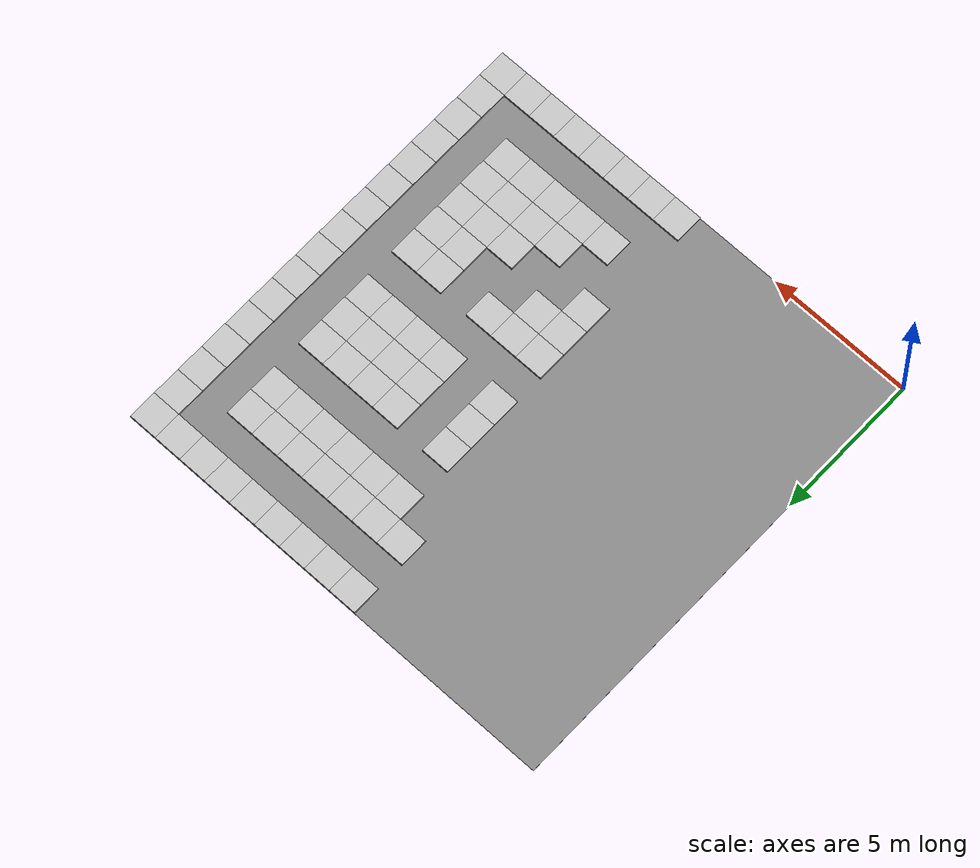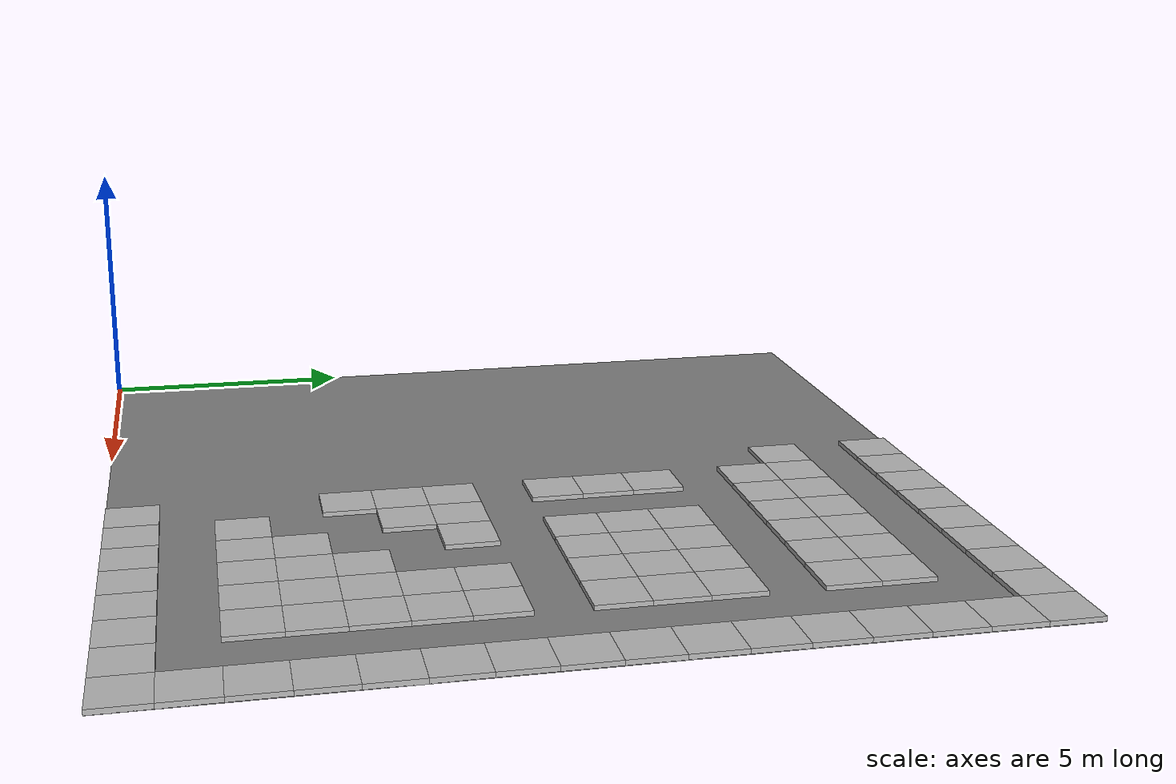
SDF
<sdf version="1.6">
 <world name="default">
  <include><uri>model://sun</uri></include>
  <model name="x7_y13">
   <static>true</static>
   <link name="link">
    <pose>7.5 13.5 0.05 0 0 0</pose>
    <visual name="visual"><geometry><box><size>1 1 0.1</size></box></geometry></visual>
    <collision name="collision"><geometry><box><size>1 1 0.1</size></box></geometry></collision>
   </link>
  </model>
  <model name="x7_y15">
   <static>true</static>
   <link name="link">
    <pose>7.5 15.5 0.05 0 0 0</pose>
    <visual name="visual"><geometry><box><size>1 1 0.1</size></box></geometry></visual>
    <collision name="collision"><geometry><box><size>1 1 0.1</size></box></geometry></collision>
   </link>
  </model>
  <model name="x8_y0">
   <static>true</static>
   <link name="link">
    <pose>8.5 0.5 0.05 0 0 0</pose>
    <visual name="visual"><geometry><box><size>1 1 0.1</size></box></geometry></visual>
    <collision name="collision"><geometry><box><size>1 1 0.1</size></box></geometry></collision>
   </link>
  </model>
  <model name="x8_y4">
   <static>true</static>
   <link name="link">
    <pose>8.5 4.5 0.05 0 0 0</pose>
    <visual name="visual"><geometry><box><size>1 1 0.1</size></box></geometry></visual>
    <collision name="collision"><geometry><box><size>1 1 0.1</size></box></geometry></collision>
   </link>
  </model>
  <model name="x8_y5">
   <static>true</static>
   <link name="link">
    <pose>8.5 5.5 0.05 0 0 0</pose>
    <visual name="visual"><geometry><box><size>1 1 0.1</size></box></geometry></visual>
    <collision name="collision"><geometry><box><size>1 1 0.1</size></box></geometry></collision>
   </link>
  </model>
  <model name="x8_y6">
   <static>true</static>
   <link name="link">
    <pose>8.5 6.5 0.05 0 0 0</pose>
    <visual name="visual"><geometry><box><size>1 1 0.1</size></box></geometry></visual>
    <collision name="collision"><geometry><box><size>1 1 0.1</size></box></geometry></collision>
   </link>
  </model>
  <model name="x8_y8">
   <static>true</static>
   <link name="link">
    <pose>8.5 8.5 0.05 0 0 0</pose>
    <visual name="visual"><geometry><box><size>1 1 0.1</size></box></geometry></visual>
    <collision name="collision"><geometry><box><size>1 1 0.1</size></box></geometry></collision>
   </link>
  </model>
  <model name="x8_y9">
   <static>true</static>
   <link name="link">
    <pose>8.5 9.5 0.05 0 0 0</pose>
    <visual name="visual"><geometry><box><size>1 1 0.1</size></box></geometry></visual>
    <collision name="collision"><geometry><box><size>1 1 0.1</size></box></geometry></collision>
   </link>
  </model>
  <model name="x8_y10">
   <static>true</static>
   <link name="link">
    <pose>8.5 10.5 0.05 0 0 0</pose>
    <visual name="visual"><geometry><box><size>1 1 0.1</size></box></geometry></visual>
    <collision name="collision"><geometry><box><size>1 1 0.1</size></box></geometry></collision>
   </link>
  </model>
  <model name="x8_y12">
   <static>true</static>
   <link name="link">
    <pose>8.5 12.5 0.05 0 0 0</pose>
    <visual name="visual"><geometry><box><size>1 1 0.1</size></box></geometry></visual>
    <collision name="collision"><geometry><box><size>1 1 0.1</size></box></geometry></collision>
   </link>
  </model>
  <model name="x8_y13">
   <static>true</static>
   <link name="link">
    <pose>8.5 13.5 0.05 0 0 0</pose>
    <visual name="visual"><geometry><box><size>1 1 0.1</size></box></geometry></visual>
    <collision name="collision"><geometry><box><size>1 1 0.1</size></box></geometry></collision>
   </link>
  </model>
  <model name="x8_y15">
   <static>true</static>
   <link name="link">
    <pose>8.5 15.5 0.05 0 0 0</pose>
    <visual name="visual"><geometry><box><size>1 1 0.1</size></box></geometry></visual>
    <collision name="collision"><geometry><box><size>1 1 0.1</size></box></geometry></collision>
   </link>
  </model>
  <model name="x9_y0">
   <static>true</static>
   <link name="link">
    <pose>9.5 0.5 0.05 0 0 0</pose>
    <visual name="visual"><geometry><box><size>1 1 0.1</size></box></geometry></visual>
    <collision name="collision"><geometry><box><size>1 1 0.1</size></box></geometry></collision>
   </link>
  </model>
  <model name="x9_y2">
   <static>true</static>
   <link name="link">
    <pose>9.5 2.5 0.05 0 0 0</pose>
    <visual name="visual"><geometry><box><size>1 1 0.1</size></box></geometry></visual>
    <collision name="collision"><geometry><box><size>1 1 0.1</size></box></geometry></collision>
   </link>
  </model>
  <model name="x9_y5">
   <static>true</static>
   <link name="link">
    <pose>9.5 5.5 0.05 0 0 0</pose>
    <visual name="visual"><geometry><box><size>1 1 0.1</size></box></geometry></visual>
    <collision name="collision"><geometry><box><size>1 1 0.1</size></box></geometry></collision>
   </link>
  </model>
  <model name="x9_y6">
   <static>true</static>
   <link name="link">
    <pose>9.5 6.5 0.05 0 0 0</pose>
    <visual name="visual"><geometry><box><size>1 1 0.1</size></box></geometry></visual>
    <collision name="collision"><geometry><box><size>1 1 0.1</size></box></geometry></collision>
   </link>
  </model>
  <model name="x9_y12">
   <static>true</static>
   <link name="link">
    <pose>9.5 12.5 0.05 0 0 0</pose>
    <visual name="visual"><geometry><box><size>1 1 0.1</size></box></geometry></visual>
    <collision name="collision"><geometry><box><size>1 1 0.1</size></box></geometry></collision>
   </link>
  </model>
  <model name="x9_y13">
   <static>true</static>
   <link name="link">
    <pose>9.5 13.5 0.05 0 0 0</pose>
    <visual name="visual"><geometry><box><size>1 1 0.1</size></box></geometry></visual>
    <collision name="collision"><geometry><box><size>1 1 0.1</size></box></geometry></collision>
   </link>
  </model>
  <model name="x9_y15">
   <static>true</static>
   <link name="link">
    <pose>9.5 15.5 0.05 0 0 0</pose>
    <visual name="visual"><geometry><box><size>1 1 0.1</size></box></geometry></visual>
    <collision name="collision"><geometry><box><size>1 1 0.1</size></box></geometry></collision>
   </link>
  </model>
  <model name="x10_y0">
   <static>true</static>
   <link name="link">
    <pose>10.5 0.5 0.05 0 0 0</pose>
    <visual name="visual"><geometry><box><size>1 1 0.1</size></box></geometry></visual>
    <collision name="collision"><geometry><box><size>1 1 0.1</size></box></geometry></collision>
   </link>
  </model>
  <model name="x10_y2">
   <static>true</static>
   <link name="link">
    <pose>10.5 2.5 0.05 0 0 0</pose>
    <visual name="visual"><geometry><box><size>1 1 0.1</size></box></geometry></visual>
    <collision name="collision"><geometry><box><size>1 1 0.1</size></box></geometry></collision>
   </link>
  </model>
  <model name="x10_y3">
   <static>true</static>
   <link name="link">
    <pose>10.5 3.5 0.05 0 0 0</pose>
    <visual name="visual"><geometry><box><size>1 1 0.1</size></box></geometry></visual>
    <collision name="collision"><geometry><box><size>1 1 0.1</size></box></geometry></collision>
   </link>
  </model>
  <model name="x10_y6">
   <static>true</static>
   <link name="link">
    <pose>10.5 6.5 0.05 0 0 0</pose>
    <visual name="visual"><geometry><box><size>1 1 0.1</size></box></geometry></visual>
    <collision name="collision"><geometry><box><size>1 1 0.1</size></box></geometry></collision>
   </link>
  </model>
  <model name="x10_y8">
   <static>true</static>
   <link name="link">
    <pose>10.5 8.5 0.05 0 0 0</pose>
    <visual name="visual"><geometry><box><size>1 1 0.1</size></box></geometry></visual>
    <collision name="collision"><geometry><box><size>1 1 0.1</size></box></geometry></collision>
   </link>
  </model>
  <model name="x10_y9">
   <static>true</static>
   <link name="link">
    <pose>10.5 9.5 0.05 0 0 0</pose>
    <visual name="visual"><geometry><box><size>1 1 0.1</size></box></geometry></visual>
    <collision name="collision"><geometry><box><size>1 1 0.1</size></box></geometry></collision>
   </link>
  </model>
  <model name="x10_y10">
   <static>true</static>
   <link name="link">
    <pose>10.5 10.5 0.05 0 0 0</pose>
    <visual name="visual"><geometry><box><size>1 1 0.1</size></box></geometry></visual>
    <collision name="collision"><geometry><box><size>1 1 0.1</size></box></geometry></collision>
   </link>
  </model>
  <model name="x10_y12">
   <static>true</static>
   <link name="link">
    <pose>10.5 12.5 0.05 0 0 0</pose>
    <visual name="visual"><geometry><box><size>1 1 0.1</size></box></geometry></visual>
    <collision name="collision"><geometry><box><size>1 1 0.1</size></box></geometry></collision>
   </link>
  </model>
  <model name="x10_y13">
   <static>true</static>
   <link name="link">
    <pose>10.5 13.5 0.05 0 0 0</pose>
    <visual name="visual"><geometry><box><size>1 1 0.1</size></box></geometry></visual>
    <collision name="collision"><geometry><box><size>1 1 0.1</size></box></geometry></collision>
   </link>
  </model>
  <model name="x10_y15">
   <static>true</static>
   <link name="link">
    <pose>10.5 15.5 0.05 0 0 0</pose>
    <visual name="visual"><geometry><box><size>1 1 0.1</size></box></geometry></visual>
    <collision name="collision"><geometry><box><size>1 1 0.1</size></box></geometry></collision>
   </link>
  </model>
  <model name="x11_y0">
   <static>true</static>
   <link name="link">
    <pose>11.5 0.5 0.05 0 0 0</pose>
    <visual name="visual"><geometry><box><size>1 1 0.1</size></box></geometry></visual>
    <collision name="collision"><geometry><box><size>1 1 0.1</size></box></geometry></collision>
   </link>
  </model>
  <model name="x11_y2">
   <static>true</static>
   <link name="link">
    <pose>11.5 2.5 0.05 0 0 0</pose>
    <visual name="visual"><geometry><box><size>1 1 0.1</size></box></geometry></visual>
    <collision name="collision"><geometry><box><size>1 1 0.1</size></box></geometry></collision>
   </link>
  </model>
  <model name="x11_y3">
   <static>true</static>
   <link name="link">
    <pose>11.5 3.5 0.05 0 0 0</pose>
    <visual name="visual"><geometry><box><size>1 1 0.1</size></box></geometry></visual>
    <collision name="collision"><geometry><box><size>1 1 0.1</size></box></geometry></collision>
   </link>
  </model>
  <model name="x11_y4">
   <static>true</static>
   <link name="link">
    <pose>11.5 4.5 0.05 0 0 0</pose>
    <visual name="visual"><geometry><box><size>1 1 0.1</size></box></geometry></visual>
    <collision name="collision"><geometry><box><size>1 1 0.1</size></box></geometry></collision>
   </link>
  </model>
  <model name="x11_y8">
   <static>true</static>
   <link name="link">
    <pose>11.5 8.5 0.05 0 0 0</pose>
    <visual name="visual"><geometry><box><size>1 1 0.1</size></box></geometry></visual>
    <collision name="collision"><geometry><box><size>1 1 0.1</size></box></geometry></collision>
   </link>
  </model>
  <model name="x11_y9">
   <static>true</static>
   <link name="link">
    <pose>11.5 9.5 0.05 0 0 0</pose>
    <visual name="visual"><geometry><box><size>1 1 0.1</size></box></geometry></visual>
    <collision name="collision"><geometry><box><size>1 1 0.1</size></box></geometry></collision>
   </link>
  </model>
  <model name="x11_y10">
   <static>true</static>
   <link name="link">
    <pose>11.5 10.5 0.05 0 0 0</pose>
    <visual name="visual"><geometry><box><size>1 1 0.1</size></box></geometry></visual>
    <collision name="collision"><geometry><box><size>1 1 0.1</size></box></geometry></collision>
   </link>
  </model>
  <model name="x11_y12">
   <static>true</static>
   <link name="link">
    <pose>11.5 12.5 0.05 0 0 0</pose>
    <visual name="visual"><geometry><box><size>1 1 0.1</size></box></geometry></visual>
    <collision name="collision"><geometry><box><size>1 1 0.1</size></box></geometry></collision>
   </link>
  </model>
  <model name="x11_y13">
   <static>true</static>
   <link name="link">
    <pose>11.5 13.5 0.05 0 0 0</pose>
    <visual name="visual"><geometry><box><size>1 1 0.1</size></box></geometry></visual>
    <collision name="collision"><geometry><box><size>1 1 0.1</size></box></geometry></collision>
   </link>
  </model>
  <model name="x11_y15">
   <static>true</static>
   <link name="link">
    <pose>11.5 15.5 0.05 0 0 0</pose>
    <visual name="visual"><geometry><box><size>1 1 0.1</size></box></geometry></visual>
    <collision name="collision"><geometry><box><size>1 1 0.1</size></box></geometry></collision>
   </link>
  </model>
  <model name="x12_y0">
   <static>true</static>
   <link name="link">
    <pose>12.5 0.5 0.05 0 0 0</pose>
    <visual name="visual"><geometry><box><size>1 1 0.1</size></box></geometry></visual>
    <collision name="collision"><geometry><box><size>1 1 0.1</size></box></geometry></collision>
   </link>
  </model>
  <model name="x12_y2">
   <static>true</static>
   <link name="link">
    <pose>12.5 2.5 0.05 0 0 0</pose>
    <visual name="visual"><geometry><box><size>1 1 0.1</size></box></geometry></visual>
    <collision name="collision"><geometry><box><size>1 1 0.1</size></box></geometry></collision>
   </link>
  </model>
  <model name="x12_y3">
   <static>true</static>
   <link name="link">
    <pose>12.5 3.5 0.05 0 0 0</pose>
    <visual name="visual"><geometry><box><size>1 1 0.1</size></box></geometry></visual>
    <collision name="collision"><geometry><box><size>1 1 0.1</size></box></geometry></collision>
   </link>
  </model>
  <model name="x12_y4">
   <static>true</static>
   <link name="link">
    <pose>12.5 4.5 0.05 0 0 0</pose>
    <visual name="visual"><geometry><box><size>1 1 0.1</size></box></geometry></visual>
    <collision name="collision"><geometry><box><size>1 1 0.1</size></box></geometry></collision>
   </link>
  </model>
  <model name="x12_y5">
   <static>true</static>
   <link name="link">
    <pose>12.5 5.5 0.05 0 0 0</pose>
    <visual name="visual"><geometry><box><size>1 1 0.1</size></box></geometry></visual>
    <collision name="collision"><geometry><box><size>1 1 0.1</size></box></geometry></collision>
   </link>
  </model>
  <model name="x12_y6">
   <static>true</static>
   <link name="link">
    <pose>12.5 6.5 0.05 0 0 0</pose>
    <visual name="visual"><geometry><box><size>1 1 0.1</size></box></geometry></visual>
    <collision name="collision"><geometry><box><size>1 1 0.1</size></box></geometry></collision>
   </link>
  </model>
  <model name="x12_y8">
   <static>true</static>
   <link name="link">
    <pose>12.5 8.5 0.05 0 0 0</pose>
    <visual name="visual"><geometry><box><size>1 1 0.1</size></box></geometry></visual>
    <collision name="collision"><geometry><box><size>1 1 0.1</size></box></geometry></collision>
   </link>
  </model>
  <model name="x12_y9">
   <static>true</static>
   <link name="link">
    <pose>12.5 9.5 0.05 0 0 0</pose>
    <visual name="visual"><geometry><box><size>1 1 0.1</size></box></geometry></visual>
    <collision name="collision"><geometry><box><size>1 1 0.1</size></box></geometry></collision>
   </link>
  </model>
  <model name="x12_y10">
   <static>true</static>
   <link name="link">
    <pose>12.5 10.5 0.05 0 0 0</pose>
    <visual name="visual"><geometry><box><size>1 1 0.1</size></box></geometry></visual>
    <collision name="collision"><geometry><box><size>1 1 0.1</size></box></geometry></collision>
   </link>
  </model>
  <model name="x12_y12">
   <static>true</static>
   <link name="link">
    <pose>12.5 12.5 0.05 0 0 0</pose>
    <visual name="visual"><geometry><box><size>1 1 0.1</size></box></geometry></visual>
    <collision name="collision"><geometry><box><size>1 1 0.1</size></box></geometry></collision>
   </link>
  </model>
  <model name="x12_y13">
   <static>true</static>
   <link name="link">
    <pose>12.5 13.5 0.05 0 0 0</pose>
    <visual name="visual"><geometry><box><size>1 1 0.1</size></box></geometry></visual>
    <collision name="collision"><geometry><box><size>1 1 0.1</size></box></geometry></collision>
   </link>
  </model>
  <model name="x12_y15">
   <static>true</static>
   <link name="link">
    <pose>12.5 15.5 0.05 0 0 0</pose>
    <visual name="visual"><geometry><box><size>1 1 0.1</size></box></geometry></visual>
    <collision name="collision"><geometry><box><size>1 1 0.1</size></box></geometry></collision>
   </link>
  </model>
  <model name="x13_y0">
   <static>true</static>
   <link name="link">
    <pose>13.5 0.5 0.05 0 0 0</pose>
    <visual name="visual"><geometry><box><size>1 1 0.1</size></box></geometry></visual>
    <collision name="collision"><geometry><box><size>1 1 0.1</size></box></geometry></collision>
   </link>
  </model>
  <model name="x13_y2">
   <static>true</static>
   <link name="link">
    <pose>13.5 2.5 0.05 0 0 0</pose>
    <visual name="visual"><geometry><box><size>1 1 0.1</size></box></geometry></visual>
    <collision name="collision"><geometry><box><size>1 1 0.1</size></box></geometry></collision>
   </link>
  </model>
  <model name="x13_y3">
   <static>true</static>
   <link name="link">
    <pose>13.5 3.5 0.05 0 0 0</pose>
    <visual name="visual"><geometry><box><size>1 1 0.1</size></box></geometry></visual>
    <collision name="collision"><geometry><box><size>1 1 0.1</size></box></geometry></collision>
   </link>
  </model>
  <model name="x13_y4">
   <static>true</static>
   <link name="link">
    <pose>13.5 4.5 0.05 0 0 0</pose>
    <visual name="visual"><geometry><box><size>1 1 0.1</size></box></geometry></visual>
    <collision name="collision"><geometry><box><size>1 1 0.1</size></box></geometry></collision>
   </link>
  </model>
  <model name="x13_y5">
   <static>true</static>
   <link name="link">
    <pose>13.5 5.5 0.05 0 0 0</pose>
    <visual name="visual"><geometry><box><size>1 1 0.1</size></box></geometry></visual>
    <collision name="collision"><geometry><box><size>1 1 0.1</size></box></geometry></collision>
   </link>
  </model>
  <model name="x13_y6">
   <static>true</static>
   <link name="link">
    <pose>13.5 6.5 0.05 0 0 0</pose>
    <visual name="visual"><geometry><box><size>1 1 0.1</size></box></geometry></visual>
    <collision name="collision"><geometry><box><size>1 1 0.1</size></box></geometry></collision>
   </link>
  </model>
  <model name="x13_y8">
   <static>true</static>
   <link name="link">
    <pose>13.5 8.5 0.05 0 0 0</pose>
    <visual name="visual"><geometry><box><size>1 1 0.1</size></box></geometry></visual>
    <collision name="collision"><geometry><box><size>1 1 0.1</size></box></geometry></collision>
   </link>
  </model>
  <model name="x13_y9">
   <static>true</static>
   <link name="link">
    <pose>13.5 9.5 0.05 0 0 0</pose>
    <visual name="visual"><geometry><box><size>1 1 0.1</size></box></geometry></visual>
    <collision name="collision"><geometry><box><size>1 1 0.1</size></box></geometry></collision>
   </link>
  </model>
  <model name="x13_y10">
   <static>true</static>
   <link name="link">
    <pose>13.5 10.5 0.05 0 0 0</pose>
    <visual name="visual"><geometry><box><size>1 1 0.1</size></box></geometry></visual>
    <collision name="collision"><geometry><box><size>1 1 0.1</size></box></geometry></collision>
   </link>
  </model>
  <model name="x13_y12">
   <static>true</static>
   <link name="link">
    <pose>13.5 12.5 0.05 0 0 0</pose>
    <visual name="visual"><geometry><box><size>1 1 0.1</size></box></geometry></visual>
    <collision name="collision"><geometry><box><size>1 1 0.1</size></box></geometry></collision>
   </link>
  </model>
  <model name="x13_y13">
   <static>true</static>
   <link name="link">
    <pose>13.5 13.5 0.05 0 0 0</pose>
    <visual name="visual"><geometry><box><size>1 1 0.1</size></box></geometry></visual>
    <collision name="collision"><geometry><box><size>1 1 0.1</size></box></geometry></collision>
   </link>
  </model>
  <model name="x13_y15">
   <static>true</static>
   <link name="link">
    <pose>13.5 15.5 0.05 0 0 0</pose>
    <visual name="visual"><geometry><box><size>1 1 0.1</size></box></geometry></visual>
    <collision name="collision"><geometry><box><size>1 1 0.1</size></box></geometry></collision>
   </link>
  </model>
  <model name="x14_y0">
   <static>true</static>
   <link name="link">
    <pose>14.5 0.5 0.05 0 0 0</pose>
    <visual name="visual"><geometry><box><size>1 1 0.1</size></box></geometry></visual>
    <collision name="collision"><geometry><box><size>1 1 0.1</size></box></geometry></collision>
   </link>
  </model>
  <model name="x14_y15">
   <static>true</static>
   <link name="link">
    <pose>14.5 15.5 0.05 0 0 0</pose>
    <visual name="visual"><geometry><box><size>1 1 0.1</size></box></geometry></visual>
    <collision name="collision"><geometry><box><size>1 1 0.1</size></box></geometry></collision>
   </link>
  </model>
  <model name="x15_y0">
   <static>true</static>
   <link name="link">
    <pose>15.5 0.5 0.05 0 0 0</pose>
    <visual name="visual"><geometry><box><size>1 1 0.1</size></box></geometry></visual>
    <collision name="collision"><geometry><box><size>1 1 0.1</size></box></geometry></collision>
   </link>
  </model>
  <model name="x15_y1">
   <static>true</static>
   <link name="link">
    <pose>15.5 1.5 0.05 0 0 0</pose>
    <visual name="visual"><geometry><box><size>1 1 0.1</size></box></geometry></visual>
    <collision name="collision"><geometry><box><size>1 1 0.1</size></box></geometry></collision>
   </link>
  </model>
  <model name="x15_y2">
   <static>true</static>
   <link name="link">
    <pose>15.5 2.5 0.05 0 0 0</pose>
    <visual name="visual"><geometry><box><size>1 1 0.1</size></box></geometry></visual>
    <collision name="collision"><geometry><box><size>1 1 0.1</size></box></geometry></collision>
   </link>
  </model>
  <model name="x15_y3">
   <static>true</static>
   <link name="link">
    <pose>15.5 3.5 0.05 0 0 0</pose>
    <visual name="visual"><geometry><box><size>1 1 0.1</size></box></geometry></visual>
    <collision name="collision"><geometry><box><size>1 1 0.1</size></box></geometry></collision>
   </link>
  </model>
  <model name="x15_y4">
   <static>true</static>
   <link name="link">
    <pose>15.5 4.5 0.05 0 0 0</pose>
    <visual name="visual"><geometry><box><size>1 1 0.1</size></box></geometry></visual>
    <collision name="collision"><geometry><box><size>1 1 0.1</size></box></geometry></collision>
   </link>
  </model>
  <model name="x15_y5">
   <static>true</static>
   <link name="link">
    <pose>15.5 5.5 0.05 0 0 0</pose>
    <visual name="visual"><geometry><box><size>1 1 0.1</size></box></geometry></visual>
    <collision name="collision"><geometry><box><size>1 1 0.1</size></box></geometry></collision>
   </link>
  </model>
  <model name="x15_y6">
   <static>true</static>
   <link name="link">
    <pose>15.5 6.5 0.05 0 0 0</pose>
    <visual name="visual"><geometry><box><size>1 1 0.1</size></box></geometry></visual>
    <collision name="collision"><geometry><box><size>1 1 0.1</size></box></geometry></collision>
   </link>
  </model>
  <model name="x15_y7">
   <static>true</static>
   <link name="link">
    <pose>15.5 7.5 0.05 0 0 0</pose>
    <visual name="visual"><geometry><box><size>1 1 0.1</size></box></geometry></visual>
    <collision name="collision"><geometry><box><size>1 1 0.1</size></box></geometry></collision>
   </link>
  </model>
  <model name="x15_y8">
   <static>true</static>
   <link name="link">
    <pose>15.5 8.5 0.05 0 0 0</pose>
    <visual name="visual"><geometry><box><size>1 1 0.1</size></box></geometry></visual>
    <collision name="collision"><geometry><box><size>1 1 0.1</size></box></geometry></collision>
   </link>
  </model>
  <model name="x15_y9">
   <static>true</static>
   <link name="link">
    <pose>15.5 9.5 0.05 0 0 0</pose>
    <visual name="visual"><geometry><box><size>1 1 0.1</size></box></geometry></visual>
    <collision name="collision"><geometry><box><size>1 1 0.1</size></box></geometry></collision>
   </link>
  </model>
  <model name="x15_y10">
   <static>true</static>
   <link name="link">
    <pose>15.5 10.5 0.05 0 0 0</pose>
    <visual name="visual"><geometry><box><size>1 1 0.1</size></box></geometry></visual>
    <collision name="collision"><geometry><box><size>1 1 0.1</size></box></geometry></collision>
   </link>
  </model>
  <model name="x15_y11">
   <static>true</static>
   <link name="link">
    <pose>15.5 11.5 0.05 0 0 0</pose>
    <visual name="visual"><geometry><box><size>1 1 0.1</size></box></geometry></visual>
    <collision name="collision"><geometry><box><size>1 1 0.1</size></box></geometry></collision>
   </link>
  </model>
  <model name="x15_y12">
   <static>true</static>
   <link name="link">
    <pose>15.5 12.5 0.05 0 0 0</pose>
    <visual name="visual"><geometry><box><size>1 1 0.1</size></box></geometry></visual>
    <collision name="collision"><geometry><box><size>1 1 0.1</size></box></geometry></collision>
   </link>
  </model>
  <model name="x15_y13">
   <static>true</static>
   <link name="link">
    <pose>15.5 13.5 0.05 0 0 0</pose>
    <visual name="visual"><geometry><box><size>1 1 0.1</size></box></geometry></visual>
    <collision name="collision"><geometry><box><size>1 1 0.1</size></box></geometry></collision>
   </link>
  </model>
  <model name="x15_y14">
   <static>true</static>
   <link name="link">
    <pose>15.5 14.5 0.05 0 0 0</pose>
    <visual name="visual"><geometry><box><size>1 1 0.1</size></box></geometry></visual>
    <collision name="collision"><geometry><box><size>1 1 0.1</size></box></geometry></collision>
   </link>
  </model>
  <model name="x15_y15">
   <static>true</static>
   <link name="link">
    <pose>15.5 15.5 0.05 0 0 0</pose>
    <visual name="visual"><geometry><box><size>1 1 0.1</size></box></geometry></visual>
    <collision name="collision"><geometry><box><size>1 1 0.1</size></box></geometry></collision>
   </link>
  </model>
  <model name="ground">
   <static>true</static>
   <link name="link">
    <pose>8 8 0.005 0 0 0</pose>
    <visual name="visual">
     <geometry><box><size>16 16 0.01</size></box></geometry>
     <material>
      <ambient>0.5 0.5 0.5 1</ambient>
      <diffuse>0.5 0.5 0.5 1</diffuse>
      <specular>0 0 0 0</specular>
      <emissive>0 0 0 1</emissive>
     </material>
    </visual>
    <collision name="collision"><geometry><box><size>16 16 0.01</size></box></geometry></collision>
   </link>
  </model>
 </world>
</sdf>
